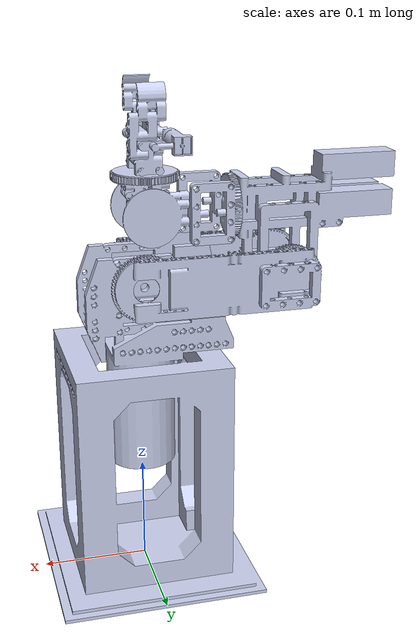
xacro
<?xml version="1.0"?>
<robot xmlns:xacro="http://www.ros.org/wiki/xacro" name="Ensamblaje">
    <xacro:arg name="initial_positions_file" default="initial_positions.yaml" />

    <!-- Import Ensamblaje urdf file -->
    <xacro:include filename="$(find lego)/urdf/Ensamblaje.urdf" />

    <!-- Import control_xacro -->
    <xacro:include filename="Ensamblaje.ros2_control.xacro" />

    <xacro:Ensamblaje_ros2_control name="FakeSystem" initial_positions_file="$(arg initial_positions_file)"/>

</robot>

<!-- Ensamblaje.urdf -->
<robot
  name="Ensamblaje">
  <link
    name="base_link">
    <inertial>
      <origin
        xyz="-0.00143297289781318 0.0972210837988271 -0.000335529749456606"
        rpy="0 0 0" />
      <mass
        value="1.42294386942817" />
      <inertia
        ixx="0.0132216509073776"
        ixy="-0.000158652293415826"
        ixz="2.93305585803312E-05"
        iyy="0.00845457151334573"
        iyz="-3.60565302489095E-05"
        izz="0.0129735358835948" />
    </inertial>
    <visual>
      <origin
        xyz="0 0 0"
        rpy="1.5708 0 1.5708" />
      <geometry>
        <mesh
          filename="package://lego/meshes/visual/base_link.dae" />
      </geometry>
      <material
        name="">
        <color
          rgba="0.792156862745098 0.819607843137255 0.933333333333333 1" />
      </material>
    </visual>
    <collision>
      <origin
        xyz="0 0 0"
        rpy="0 0 3.1416" />
      <geometry>
        <mesh
          filename="package://lego/meshes/collision/base_link.STL" />
      </geometry>
    </collision>
  </link>
  <link
    name="BaseMovil">
    <inertial>
      <origin
        xyz="-1.28282331534233E-16 -0.134703164389748 0.0119579386369056"
        rpy="0 0 0" />
      <mass
        value="0.242867568745409" />
      <inertia
        ixx="0.000808764810710543"
        ixy="-6.07751799568124E-19"
        ixz="1.49951441249629E-18"
        iyy="0.00036925218578822"
        iyz="6.19221462787169E-05"
        izz="0.000663376584846465" />
    </inertial>
    <visual>
      <origin
        xyz="0 0 0"
        rpy="0 -1.5708 3.1416" />
      <geometry>
        <mesh
          filename="package://lego/meshes/visual/BaseMovil.dae" />
      </geometry>
      <material
        name="">
        <color
          rgba="0.792156862745098 0.819607843137255 0.933333333333333 1" />
      </material>
    </visual>
    <collision>
      <origin
        xyz="0 0 0"
        rpy="0 3.1416 0" />
      <geometry>
        <mesh
          filename="package://lego/meshes/collision/BaseMovil.STL" />
      </geometry>
    </collision>
  </link>
  <joint
    name="Joint1"
    type="revolute">
    <origin
      xyz="0 0 0.1089"
      rpy="-1.5708 0 -1.5708" />
    <parent
      link="base_link" />
    <child
      link="BaseMovil" />
    <axis
      xyz="0 1 0" />
    <limit
      lower="-3.1416"
      upper="3.1416"
      effort="0"
      velocity="-3.1416" />
    <dynamics damping="2.0" friction="0.5"/>
  </joint>
  <link
    name="Brazo">
    <inertial>
      <origin
        xyz="-2.64184148787479E-08 0.0827271120551161 -1.86361570064797E-08"
        rpy="0 0 0" />
      <mass
        value="0.157608523774481" />
      <inertia
        ixx="0.000429191341144751"
        ixy="2.04753294618092E-10"
        ixz="-1.3155808410927E-10"
        iyy="0.000289324520057458"
        iyz="3.47389335865343E-10"
        izz="0.000639613496156974" />
    </inertial>
    <visual>
      <origin
        xyz="0 0 0"
        rpy="1.5708 0 1.5708" />
      <geometry>
        <mesh
          filename="package://lego/meshes/visual/Brazo.dae" />
      </geometry>
      <material
        name="">
        <color
          rgba="0.792156862745098 0.819607843137255 0.933333333333333 1" />
      </material>
    </visual>
    <collision>
      <origin
        xyz="0 0 0"
        rpy="1.5708 0 0" />
      <geometry>
        <mesh
          filename="package://lego/meshes/collision/Brazo.STL" />
      </geometry>
    </collision>
  </link>
  <joint
    name="Joint2"
    type="revolute">
    <origin
      xyz="0 -0.1801 0"
      rpy="-3.1416 0 -3.1416" />
    <parent
      link="BaseMovil" />
    <child
      link="Brazo" />
    <axis
      xyz="1 0 0" />
    <limit
      lower="0"
      upper="3.1416"
      effort="0"
      velocity="3.141" />
    <dynamics damping="2.0" friction="0.5"/>
  </joint>
  <link
    name="AnteBrazo">
    <inertial>
      <origin
        xyz="-0.0365667497746823 0.0598651764142495 1.20154548090383E-15"
        rpy="0 0 0" />
      <mass
        value="0.216310329191895" />
      <inertia
        ixx="0.000264607052882941"
        ixy="0.000127628052151096"
        ixz="2.22003743787601E-18"
        iyy="0.000442094670964451"
        iyz="-9.42644384625411E-19"
        izz="0.000578578112922437" />
    </inertial>
    <visual>
      <origin
        xyz="0 0 0"
        rpy="0 0 0" />
      <geometry>
        <mesh
          filename="package://lego/meshes/visual/AnteBrazo.dae" />
      </geometry>
      <material
        name="">
        <color
          rgba="0.792156862745098 0.819607843137255 0.933333333333333 1" />
      </material>
    </visual>
    <collision>
      <origin
        xyz="0 0 0"
        rpy="0 1.5708 0" />
      <geometry>
        <mesh
          filename="package://lego/meshes/collision/AnteBrazo.STL" />
      </geometry>
    </collision>
  </link>
  <joint
    name="Joint3"
    type="revolute">
    <origin
      xyz="0 0 0.136"
      rpy="3.1416 3.1416 0" />
    <parent
      link="Brazo" />
    <child
      link="AnteBrazo" />
    <axis
      xyz="-1 0 0" />
    <limit
      lower="-3.1416"
      upper="0"
      effort="0"
      velocity="3.1416" />
    <dynamics damping="2.0" friction="0.5"/>
  </joint>
  <link
    name="Munieca">
    <inertial>
      <origin
        xyz="0.0452141820603019 0.000225887659027313 0.00200000000000258"
        rpy="0 0 0" />
      <mass
        value="0.0758287405516436" />
      <inertia
        ixx="4.76404035653544E-05"
        ixy="7.14512909325067E-07"
        ixz="3.70854664888897E-19"
        iyy="0.000121899293592062"
        iyz="-1.61046859911085E-20"
        izz="0.000101681570321121" />
    </inertial>
    <visual>
      <origin
        xyz="0 0 0"
        rpy="0 0 0" />
      <geometry>
        <mesh
          filename="package://lego/meshes/visual/Munieca.dae" />
      </geometry>
      <material
        name="">
        <color
          rgba="0.792156862745098 0.819607843137255 0.933333333333333 1" />
      </material>
    </visual>
    <collision>
      <origin
        xyz="-0.002 0 0"
        rpy="0 1.5708 0" />
      <geometry>
        <mesh
          filename="package://lego/meshes/collision/Munieca.STL" />
      </geometry>
    </collision>
  </link>
  <joint
    name="Joint4"
    type="revolute">
    <origin
      xyz="0 0.064 -0.045"
      rpy="0 0 0" />
    <parent
      link="AnteBrazo" />
    <child
      link="Munieca" />
    <axis
      xyz="0 0 1" />
    <limit
      lower="-1.5708"
      upper="1.5708"
      effort="0"
      velocity="1.5708" />
    <dynamics damping="2.0" friction="0.5"/>
  </joint>
  <link
    name="Mano">
    <inertial>
      <origin
        xyz="-5.20417042793042E-17 0.00199999999999855 0.0208560522689041"
        rpy="0 0 0" />
      <mass
        value="0.0133403749579747" />
      <inertia
        ixx="1.82483410767168E-06"
        ixy="2.17296469508656E-22"
        ixz="1.87218350196537E-20"
        iyy="2.56171126779421E-06"
        iyz="5.05134272654301E-22"
        izz="3.15031472875163E-06" />
    </inertial>
    <visual>
      <origin
        xyz="0 0 0"
        rpy="0 -1.5708 0" />
      <geometry>
        <mesh
          filename="package://lego/meshes/visual/Mano.dae" />
      </geometry>
      <material
        name="">
        <color
          rgba="0.792156862745098 0.819607843137255 0.933333333333333 1" />
      </material>
    </visual>
    <collision>
      <origin
        xyz="0 0 0"
        rpy="0 0 0" />
      <geometry>
        <mesh
          filename="package://lego/meshes/collision/Mano.STL" />
      </geometry>
    </collision>
  </link>
  <joint
    name="Joint5"
    type="revolute">
    <origin
      xyz="0 0 -0.083"
      rpy="1.5708 1.5708 3.1416" />
    <parent
      link="Munieca" />
    <child
      link="Mano" />
    <axis
      xyz="0 1 0" />
    <limit
      lower="0"
      upper="3.1416"
      effort="0"
      velocity="3.1416" />
    <dynamics damping="2.0" friction="0.5"/>
  </joint>
  <link
    name="Pinza">
    <inertial>
      <origin
        xyz="0.0178763129048624 -0.00468246862579161 0"
        rpy="0 0 0" />
      <mass
        value="0.0460205290916002" />
      <inertia
        ixx="2.65578193912434E-05"
        ixy="3.68997691913354E-06"
        ixz="-3.68478392364538E-06"
        iyy="2.66633549930463E-05"
        iyz="3.76555413744802E-06"
        izz="1.92865208127899E-05" />
    </inertial>
    <visual>
      <origin
        xyz="0 0 0"
        rpy="0 1.5708 3.1416" />
      <geometry>
        <mesh
          filename="package://lego/meshes/visual/Pinza.dae" />
      </geometry>
      <material
        name="">
        <color
          rgba="0.792156862745098 0.819607843137255 0.933333333333333 1" />
      </material>
    </visual>
    <collision>
      <origin
        xyz="0 0 0"
        rpy="3.1416 0 0" />
      <geometry>
        <mesh
          filename="package://lego/meshes/collision/Pinza.STL" />
      </geometry>
    </collision>
  </link>
  <joint
    name="Joint6"
    type="revolute">
    <origin
      xyz="0 0 0.029"
      rpy="1.5708 -1.5708 0" />
    <parent
      link="Mano" />
    <child
      link="Pinza" />
    <axis
      xyz="1 0 0" />
    <limit
      lower="-1.5708"
      upper="1.5708"
      effort="0"
      velocity="1.5708" />
  <dynamics damping="2.0" friction="0.5"/>
  </joint>
  <link
    name="Dedo1">
    <inertial>
      <origin
        xyz="0.0178763129048624 -0.00468246862579161 0.00467588148839063"
        rpy="0 0 0" />
      <mass
        value="0.0460205290916002" />
      <inertia
        ixx="2.65578193912434E-05"
        ixy="3.68997691913354E-06"
        ixz="-3.68478392364537E-06"
        iyy="2.66633549930463E-05"
        iyz="3.76555413744802E-06"
        izz="1.92865208127899E-05" />
    </inertial>
    <visual>
      <origin
        xyz="0 0.00846 0"
        rpy="-1.5708 3.1416 -1.5708" />
      <geometry>
        <mesh
          filename="package://lego/meshes/visual/Dedo1.dae" />
      </geometry>
      <material
        name="">
        <color
          rgba="0.792156862745098 0.819607843137255 0.933333333333333 1" />
      </material>
    </visual>
    <collision>
      <origin
        xyz="0 0.008 0.024"
        rpy="0 -1.5708 1.5708" />
      <geometry>
        <mesh
          filename="package://lego/meshes/collision/Dedo2.STL" />
      </geometry>
    </collision>
  </link>
  <joint
    name="Joint7"
    type="prismatic">
    <origin
      xyz="0.035 0 -0.008"
      rpy="0 0 0" />
    <parent
      link="Pinza" />
    <child
      link="Dedo1" />
    <axis
      xyz="0 0 -1" />
    <limit
      lower="0"
      upper="0.016"
      effort="0"
      velocity="0.016" />
  </joint>
  <link
    name="Dedo2">
    <inertial>
      <origin
        xyz="0.00419946676985444 -0.0109693363746826 0.00161600585191003"
        rpy="0 0 0" />
      <mass
        value="0.0118311180278391" />
      <inertia
        ixx="3.6595012348337E-06"
        ixy="1.53512779026541E-06"
        ixz="-1.60655311667269E-07"
        iyy="3.58310500961816E-06"
        iyz="5.82152912022735E-07"
        izz="6.23211599514572E-06" />
    </inertial>
    <visual>
      <origin
        xyz="0 -0.008 -0.008"
        rpy="0 1.5708 0" />
      <geometry>
        <mesh
          filename="package://lego/meshes/visual/Dedo2.dae" />
      </geometry>
      <material
        name="">
        <color
          rgba="0.792156862745098 0.819607843137255 0.933333333333333 1" />
      </material>
    </visual>
    <collision>
      <origin
        xyz="0 0.016 -0.008"
        rpy="0 0 1.570" />
      <geometry>
        <mesh
          filename="package://lego/meshes/collision/Dedo2.STL" />
      </geometry>
    </collision>
  </link>
  <joint
    name="Joint8"
    type="prismatic">
    <origin
      xyz="0.035 0 0"
      rpy="1.5708 3.1416 3.1416" />
    <parent
      link="Pinza" />
    <child
      link="Dedo2" />
    <axis
      xyz="0 -1 0" />
    <limit
      lower="0"
      upper="0.016"
      effort="0"
      velocity="0.016" />
  </joint>

</robot>
